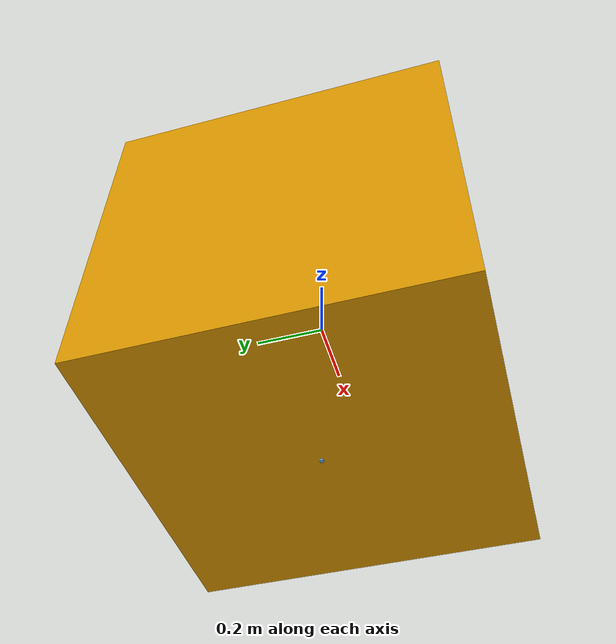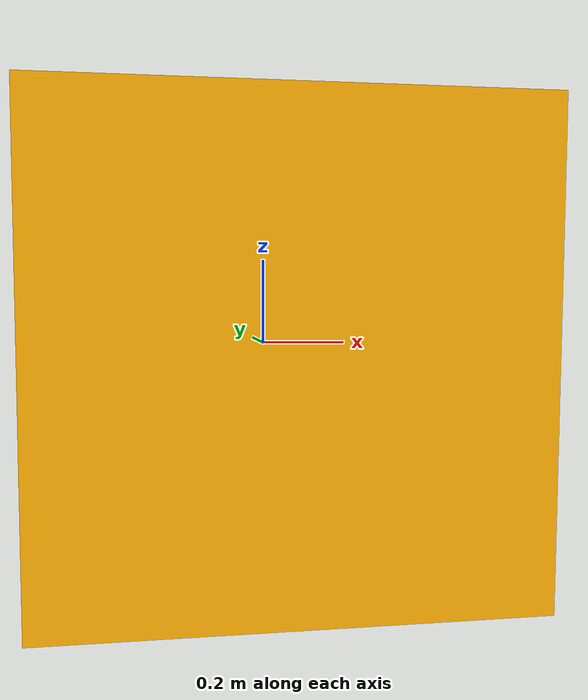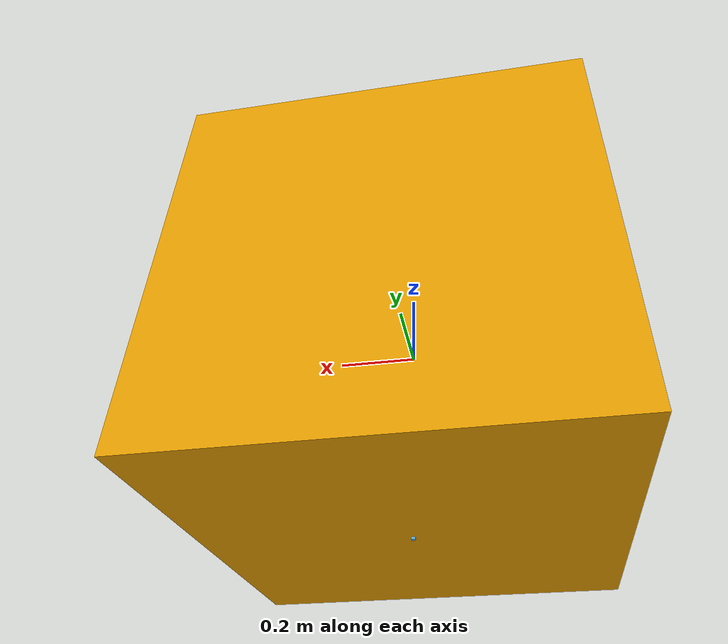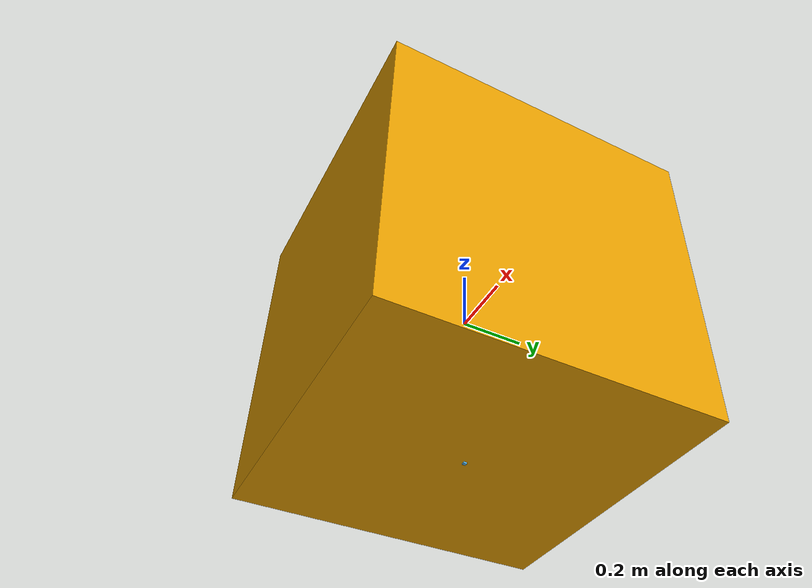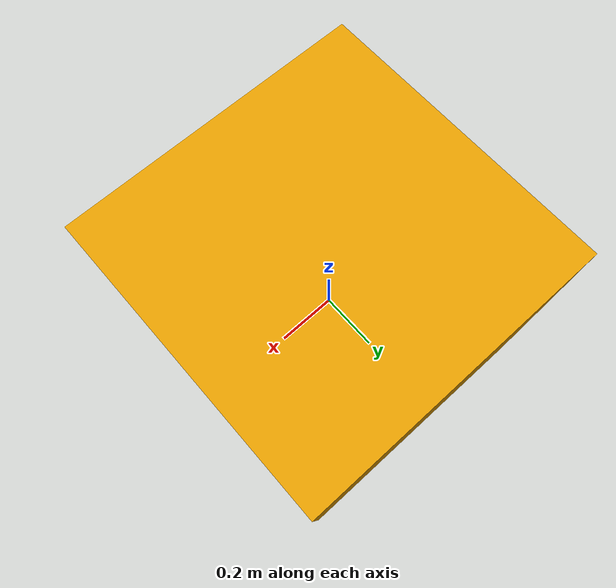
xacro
<?xml version="1.0"?>
<robot name="cart" xmlns:xacro="http://www.ros.org/wiki/xacro">
  <xacro:macro name="sonar_sensor" params="name parent *origin ros_topic update_rate min_range max_range field_of_view ray_count">
    <joint name="${name}_joint" type="fixed">
      <xacro:insert_block name="origin" />
      <parent link="${parent}"/>
      <child link="${name}_link"/>
    </joint>

    <link name="${name}_link">
      <inertial>
        <mass value="0.001" />
        <origin xyz="0 0 0" rpy="0 0 0" />
        <inertia ixx="0.000000017" ixy="0" ixz="0" iyy="0.000000017" iyz="0" izz="0.000000017" />
      </inertial>
      <visual>
        <origin xyz="0 0 0" rpy="0 0 0" />
        <geometry>
          <box size="0.01 0.01 0.01" />
          <mesh filename="file:///home/hackathon/ROSCock/src/hector_models/hector_sensors_description/meshes/sonar_sensor/max_sonar_ez4.dae"/>
        </geometry>
      </visual>
      <collision>
        <origin xyz="0 0 0" rpy="0 0 0" />
        <geometry>
          <box size="0.01 0.01 0.01" />
        </geometry>
      </collision>
    </link>

    <gazebo reference="${name}_link">
      <sensor type="ray" name="${name}">
        <always_on>true</always_on>
        <update_rate>${update_rate}</update_rate>
        <pose>0 0 0 0 0 0</pose>
        <visualize>false</visualize>
        <ray>
          <scan>
            <horizontal>
              <samples>${ray_count}</samples>
              <resolution>1</resolution>
              <min_angle>-${field_of_view/2}</min_angle>
              <max_angle> ${field_of_view/2}</max_angle>
            </horizontal>
            <vertical>
              <samples>${ray_count}</samples>
              <resolution>1</resolution>
              <min_angle>-${field_of_view/2}</min_angle>
              <max_angle> ${field_of_view/2}</max_angle>
            </vertical>
          </scan>
          <range>
            <min>${min_range}</min>
            <max>${max_range}</max>
            <resolution>0.01</resolution>
          </range>
        </ray>

        <plugin name="gazebo_ros_${name}_controller" filename="libhector_gazebo_ros_sonar.so">
          <gaussianNoise>0.005</gaussianNoise>
          <topicName>${ros_topic}</topicName>
          <frameId>${name}_link</frameId>
        </plugin>
      </sensor>
    </gazebo>
  </xacro:macro>
<link name="base_link">
<origin xyz = "0 0 0" rpy="0 0 0"/>
        <visual name="visual">
          <geometry>
            <box size="1 1 1"/>
          </geometry>
        </visual>
</link>
  <xacro:sonar_sensor name="cock" update_rate="60" min_range="10" max_range="100" field_of_view="30" ray_count="4" parent="base_link" ros_topic="sensor_msgs/Range_sonar">
    <origin xyz="0 0 -.5" rpy="0 0 0"/>
  </xacro:sonar_sensor>
<plugin name="model_push" filename="libmodel_push.so"/>
</robot>
